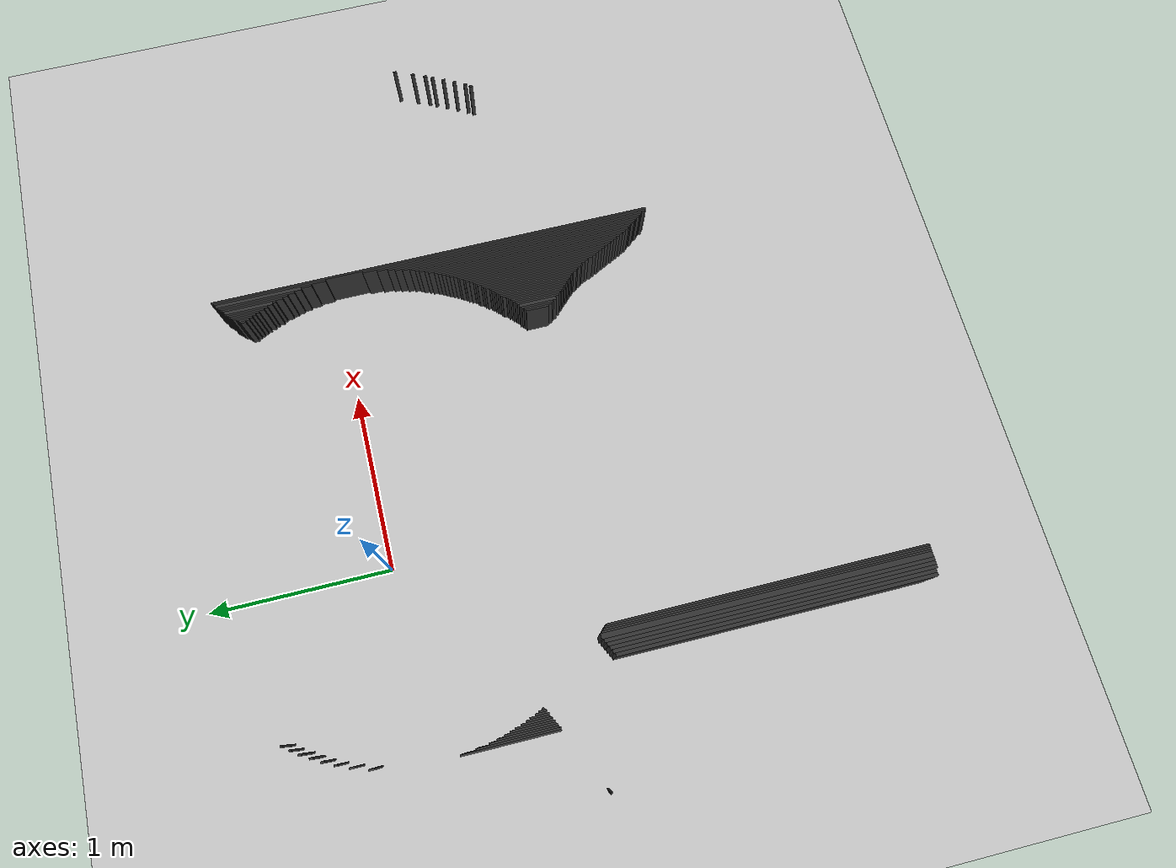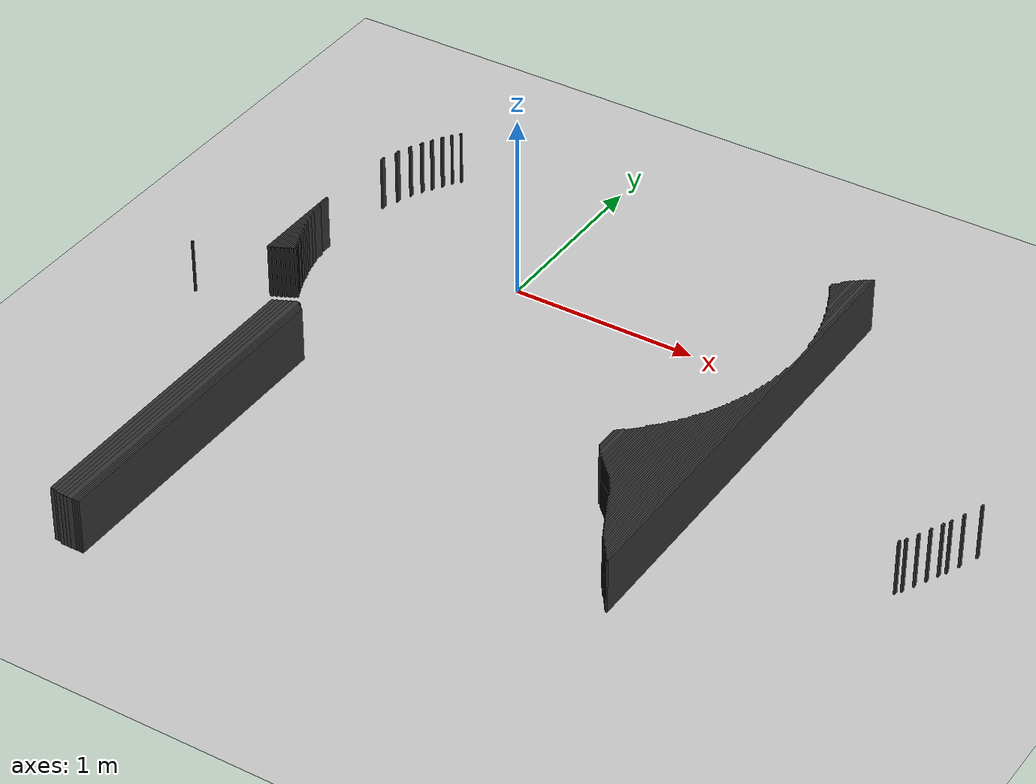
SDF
<sdf version="1.7">
 <world name="mapa_mundo">
  <model name="ground_plane">
   <static>true</static>
   <link name="link">
    <collision name="collision">
     <geometry><plane><normal>0 0 1</normal><size>10 10</size></plane></geometry>
     <surface><friction><ode><mu>100</mu><mu2>50</mu2></ode></friction></surface>
    </collision>
    <visual name="visual">
     <geometry><plane><normal>0 0 1</normal><size>10 10</size></plane></geometry>
     <material>
      <ambient>0.8 0.8 0.8 1</ambient>
      <diffuse>0.8 0.8 0.8 1</diffuse>
      <specular>0.8 0.8 0.8 1</specular>
     </material>
    </visual>
   </link>
  </model>
  <model name="wall_800">
   <static>true</static>
   <link name="link">
    <collision name="collision"><geometry><box><size>0.01 0.01 0.3</size></box></geometry></collision>
    <visual name="visual">
     <geometry><box><size>0.01 0.01 0.3</size></box></geometry>
     <material><ambient>0.2 0.2 0.2 1</ambient><diffuse>0.2 0.2 0.2 1</diffuse></material>
    </visual>
    <pose>-0.765 0.665 0.15 0 0 0</pose>
   </link>
  </model>
  <model name="wall_801">
   <static>true</static>
   <link name="link">
    <collision name="collision"><geometry><box><size>0.01 2.5 0.3</size></box></geometry></collision>
    <visual name="visual">
     <geometry><box><size>0.01 2.5 0.3</size></box></geometry>
     <material><ambient>0.2 0.2 0.2 1</ambient><diffuse>0.2 0.2 0.2 1</diffuse></material>
    </visual>
    <pose>1.635 -0.59 0.15 0 0 0</pose>
   </link>
  </model>
  <model name="wall_802">
   <static>true</static>
   <link name="link">
    <collision name="collision"><geometry><box><size>0.01 0.63 0.3</size></box></geometry></collision>
    <visual name="visual">
     <geometry><box><size>0.01 0.63 0.3</size></box></geometry>
     <material><ambient>0.2 0.2 0.2 1</ambient><diffuse>0.2 0.2 0.2 1</diffuse></material>
    </visual>
    <pose>1.625 0.335 0.15 0 0 0</pose>
   </link>
  </model>
  <model name="wall_803">
   <static>true</static>
   <link name="link">
    <collision name="collision"><geometry><box><size>0.02 0.48 0.3</size></box></geometry></collision>
    <visual name="visual">
     <geometry><box><size>0.02 0.48 0.3</size></box></geometry>
     <material><ambient>0.2 0.2 0.2 1</ambient><diffuse>0.2 0.2 0.2 1</diffuse></material>
    </visual>
    <pose>1.61 0.4 0.15 0 0 0</pose>
   </link>
  </model>
  <model name="wall_804">
   <static>true</static>
   <link name="link">
    <collision name="collision"><geometry><box><size>0.01 0.01 0.3</size></box></geometry></collision>
    <visual name="visual">
     <geometry><box><size>0.01 0.01 0.3</size></box></geometry>
     <material><ambient>0.2 0.2 0.2 1</ambient><diffuse>0.2 0.2 0.2 1</diffuse></material>
    </visual>
    <pose>-0.795 0.625 0.15 0 0 0</pose>
   </link>
  </model>
  <model name="wall_805">
   <static>true</static>
   <link name="link">
    <collision name="collision"><geometry><box><size>0.01 0.43 0.3</size></box></geometry></collision>
    <visual name="visual">
     <geometry><box><size>0.01 0.43 0.3</size></box></geometry>
     <material><ambient>0.2 0.2 0.2 1</ambient><diffuse>0.2 0.2 0.2 1</diffuse></material>
    </visual>
    <pose>1.595 0.41500000000000004 0.15 0 0 0</pose>
   </link>
  </model>
  <model name="wall_806">
   <static>true</static>
   <link name="link">
    <collision name="collision"><geometry><box><size>0.01 0.38 0.3</size></box></geometry></collision>
    <visual name="visual">
     <geometry><box><size>0.01 0.38 0.3</size></box></geometry>
     <material><ambient>0.2 0.2 0.2 1</ambient><diffuse>0.2 0.2 0.2 1</diffuse></material>
    </visual>
    <pose>1.585 0.43 0.15 0 0 0</pose>
   </link>
  </model>
  <model name="wall_807">
   <static>true</static>
   <link name="link">
    <collision name="collision"><geometry><box><size>0.01 0.34 0.3</size></box></geometry></collision>
    <visual name="visual">
     <geometry><box><size>0.01 0.34 0.3</size></box></geometry>
     <material><ambient>0.2 0.2 0.2 1</ambient><diffuse>0.2 0.2 0.2 1</diffuse></material>
    </visual>
    <pose>1.575 0.44 0.15 0 0 0</pose>
   </link>
  </model>
  <model name="wall_808">
   <static>true</static>
   <link name="link">
    <collision name="collision"><geometry><box><size>0.02 0.27 0.3</size></box></geometry></collision>
    <visual name="visual">
     <geometry><box><size>0.02 0.27 0.3</size></box></geometry>
     <material><ambient>0.2 0.2 0.2 1</ambient><diffuse>0.2 0.2 0.2 1</diffuse></material>
    </visual>
    <pose>1.56 0.465 0.15 0 0 0</pose>
   </link>
  </model>
  <model name="wall_809">
   <static>true</static>
   <link name="link">
    <collision name="collision"><geometry><box><size>0.01 0.02 0.3</size></box></geometry></collision>
    <visual name="visual">
     <geometry><box><size>0.01 0.02 0.3</size></box></geometry>
     <material><ambient>0.2 0.2 0.2 1</ambient><diffuse>0.2 0.2 0.2 1</diffuse></material>
    </visual>
    <pose>-0.8250000000000001 0.58 0.15 0 0 0</pose>
   </link>
  </model>
  <model name="wall_810">
   <static>true</static>
   <link name="link">
    <collision name="collision"><geometry><box><size>0.01 0.23 0.3</size></box></geometry></collision>
    <visual name="visual">
     <geometry><box><size>0.01 0.23 0.3</size></box></geometry>
     <material><ambient>0.2 0.2 0.2 1</ambient><diffuse>0.2 0.2 0.2 1</diffuse></material>
    </visual>
    <pose>1.545 0.47500000000000003 0.15 0 0 0</pose>
   </link>
  </model>
  <model name="wall_811">
   <static>true</static>
   <link name="link">
    <collision name="collision"><geometry><box><size>0.01 0.2 0.3</size></box></geometry></collision>
    <visual name="visual">
     <geometry><box><size>0.01 0.2 0.3</size></box></geometry>
     <material><ambient>0.2 0.2 0.2 1</ambient><diffuse>0.2 0.2 0.2 1</diffuse></material>
    </visual>
    <pose>1.5350000000000001 0.48 0.15 0 0 0</pose>
   </link>
  </model>
  <model name="wall_812">
   <static>true</static>
   <link name="link">
    <collision name="collision"><geometry><box><size>0.01 0.16 0.3</size></box></geometry></collision>
    <visual name="visual">
     <geometry><box><size>0.01 0.16 0.3</size></box></geometry>
     <material><ambient>0.2 0.2 0.2 1</ambient><diffuse>0.2 0.2 0.2 1</diffuse></material>
    </visual>
    <pose>1.5250000000000001 0.49 0.15 0 0 0</pose>
   </link>
  </model>
  <model name="wall_813">
   <static>true</static>
   <link name="link">
    <collision name="collision"><geometry><box><size>0.01 0.13 0.3</size></box></geometry></collision>
    <visual name="visual">
     <geometry><box><size>0.01 0.13 0.3</size></box></geometry>
     <material><ambient>0.2 0.2 0.2 1</ambient><diffuse>0.2 0.2 0.2 1</diffuse></material>
    </visual>
    <pose>1.5150000000000001 0.495 0.15 0 0 0</pose>
   </link>
  </model>
  <model name="wall_814">
   <static>true</static>
   <link name="link">
    <collision name="collision"><geometry><box><size>0.01 0.02 0.3</size></box></geometry></collision>
    <visual name="visual">
     <geometry><box><size>0.01 0.02 0.3</size></box></geometry>
     <material><ambient>0.2 0.2 0.2 1</ambient><diffuse>0.2 0.2 0.2 1</diffuse></material>
    </visual>
    <pose>-0.855 0.53 0.15 0 0 0</pose>
   </link>
  </model>
  <model name="wall_815">
   <static>true</static>
   <link name="link">
    <collision name="collision"><geometry><box><size>0.01 0.09 0.3</size></box></geometry></collision>
    <visual name="visual">
     <geometry><box><size>0.01 0.09 0.3</size></box></geometry>
     <material><ambient>0.2 0.2 0.2 1</ambient><diffuse>0.2 0.2 0.2 1</diffuse></material>
    </visual>
    <pose>1.5050000000000001 0.495 0.15 0 0 0</pose>
   </link>
  </model>
  <model name="wall_816">
   <static>true</static>
   <link name="link">
    <collision name="collision"><geometry><box><size>0.01 0.06 0.3</size></box></geometry></collision>
    <visual name="visual">
     <geometry><box><size>0.01 0.06 0.3</size></box></geometry>
     <material><ambient>0.2 0.2 0.2 1</ambient><diffuse>0.2 0.2 0.2 1</diffuse></material>
    </visual>
    <pose>1.495 0.5 0.15 0 0 0</pose>
   </link>
  </model>
  <model name="wall_817">
   <static>true</static>
   <link name="link">
    <collision name="collision"><geometry><box><size>0.01 0.03 0.3</size></box></geometry></collision>
    <visual name="visual">
     <geometry><box><size>0.01 0.03 0.3</size></box></geometry>
     <material><ambient>0.2 0.2 0.2 1</ambient><diffuse>0.2 0.2 0.2 1</diffuse></material>
    </visual>
    <pose>1.485 0.505 0.15 0 0 0</pose>
   </link>
  </model>
  <model name="wall_818">
   <static>true</static>
   <link name="link">
    <collision name="collision"><geometry><box><size>0.01 0.02 0.3</size></box></geometry></collision>
    <visual name="visual">
     <geometry><box><size>0.01 0.02 0.3</size></box></geometry>
     <material><ambient>0.2 0.2 0.2 1</ambient><diffuse>0.2 0.2 0.2 1</diffuse></material>
    </visual>
    <pose>-0.885 0.48 0.15 0 0 0</pose>
   </link>
  </model>
  <model name="wall_819">
   <static>true</static>
   <link name="link">
    <collision name="collision"><geometry><box><size>0.01 0.02 0.3</size></box></geometry></collision>
    <visual name="visual">
     <geometry><box><size>0.01 0.02 0.3</size></box></geometry>
     <material><ambient>0.2 0.2 0.2 1</ambient><diffuse>0.2 0.2 0.2 1</diffuse></material>
    </visual>
    <pose>-0.915 0.42 0.15 0 0 0</pose>
   </link>
  </model>
  <model name="wall_820">
   <static>true</static>
   <link name="link">
    <collision name="collision"><geometry><box><size>0.01 0.03 0.3</size></box></geometry></collision>
    <visual name="visual">
     <geometry><box><size>0.01 0.03 0.3</size></box></geometry>
     <material><ambient>0.2 0.2 0.2 1</ambient><diffuse>0.2 0.2 0.2 1</diffuse></material>
    </visual>
    <pose>-0.9450000000000001 0.34500000000000003 0.15 0 0 0</pose>
   </link>
  </model>
  <model name="wall_821">
   <static>true</static>
   <link name="link">
    <collision name="collision"><geometry><box><size>0.01 0.02 0.3</size></box></geometry></collision>
    <visual name="visual">
     <geometry><box><size>0.01 0.02 0.3</size></box></geometry>
     <material><ambient>0.2 0.2 0.2 1</ambient><diffuse>0.2 0.2 0.2 1</diffuse></material>
    </visual>
    <pose>1.565 0.32 0.15 0 0 0</pose>
   </link>
  </model>
  <model name="wall_822">
   <static>true</static>
   <link name="link">
    <collision name="collision"><geometry><box><size>0.01 0.03 0.3</size></box></geometry></collision>
    <visual name="visual">
     <geometry><box><size>0.01 0.03 0.3</size></box></geometry>
     <material><ambient>0.2 0.2 0.2 1</ambient><diffuse>0.2 0.2 0.2 1</diffuse></material>
    </visual>
    <pose>-0.975 0.255 0.15 0 0 0</pose>
   </link>
  </model>
  <model name="wall_823">
   <static>true</static>
   <link name="link">
    <collision name="collision"><geometry><box><size>0.01 0.06 0.3</size></box></geometry></collision>
    <visual name="visual">
     <geometry><box><size>0.01 0.06 0.3</size></box></geometry>
     <material><ambient>0.2 0.2 0.2 1</ambient><diffuse>0.2 0.2 0.2 1</diffuse></material>
    </visual>
    <pose>1.615 0.13 0.15 0 0 0</pose>
   </link>
  </model>
  <model name="wall_824">
   <static>true</static>
   <link name="link">
    <collision name="collision"><geometry><box><size>0.01 0.51 0.3</size></box></geometry></collision>
    <visual name="visual">
     <geometry><box><size>0.01 0.51 0.3</size></box></geometry>
     <material><ambient>0.2 0.2 0.2 1</ambient><diffuse>0.2 0.2 0.2 1</diffuse></material>
    </visual>
    <pose>-1.0150000000000001 -0.435 0.15 0 0 0</pose>
   </link>
  </model>
  <model name="wall_825">
   <static>true</static>
   <link name="link">
    <collision name="collision">
     <geometry><box><size>0.01 1.6400000000000001 0.3</size></box></geometry>
    </collision>
    <visual name="visual">
     <geometry><box><size>0.01 1.6400000000000001 0.3</size></box></geometry>
     <material><ambient>0.2 0.2 0.2 1</ambient><diffuse>0.2 0.2 0.2 1</diffuse></material>
    </visual>
    <pose>1.625 -1.01 0.15 0 0 0</pose>
   </link>
  </model>
  <model name="wall_826">
   <static>true</static>
   <link name="link">
    <collision name="collision"><geometry><box><size>0.01 0.43 0.3</size></box></geometry></collision>
    <visual name="visual">
     <geometry><box><size>0.01 0.43 0.3</size></box></geometry>
     <material><ambient>0.2 0.2 0.2 1</ambient><diffuse>0.2 0.2 0.2 1</diffuse></material>
    </visual>
    <pose>-1.0050000000000001 -0.47500000000000003 0.15 0 0 0</pose>
   </link>
  </model>
  <model name="wall_827">
   <static>true</static>
   <link name="link">
    <collision name="collision"><geometry><box><size>0.01 1.54 0.3</size></box></geometry></collision>
    <visual name="visual">
     <geometry><box><size>0.01 1.54 0.3</size></box></geometry>
     <material><ambient>0.2 0.2 0.2 1</ambient><diffuse>0.2 0.2 0.2 1</diffuse></material>
    </visual>
    <pose>1.615 -1.04 0.15 0 0 0</pose>
   </link>
  </model>
  <model name="wall_828">
   <static>true</static>
   <link name="link">
    <collision name="collision">
     <geometry><box><size>0.01 0.35000000000000003 0.3</size></box></geometry>
    </collision>
    <visual name="visual">
     <geometry><box><size>0.01 0.35000000000000003 0.3</size></box></geometry>
     <material><ambient>0.2 0.2 0.2 1</ambient><diffuse>0.2 0.2 0.2 1</diffuse></material>
    </visual>
    <pose>-0.995 -0.505 0.15 0 0 0</pose>
   </link>
  </model>
  <model name="wall_829">
   <static>true</static>
   <link name="link">
    <collision name="collision"><geometry><box><size>0.01 1.47 0.3</size></box></geometry></collision>
    <visual name="visual">
     <geometry><box><size>0.01 1.47 0.3</size></box></geometry>
     <material><ambient>0.2 0.2 0.2 1</ambient><diffuse>0.2 0.2 0.2 1</diffuse></material>
    </visual>
    <pose>1.605 -1.065 0.15 0 0 0</pose>
   </link>
  </model>
  <model name="wall_830">
   <static>true</static>
   <link name="link">
    <collision name="collision"><geometry><box><size>0.01 0.31 0.3</size></box></geometry></collision>
    <visual name="visual">
     <geometry><box><size>0.01 0.31 0.3</size></box></geometry>
     <material><ambient>0.2 0.2 0.2 1</ambient><diffuse>0.2 0.2 0.2 1</diffuse></material>
    </visual>
    <pose>-0.985 -0.525 0.15 0 0 0</pose>
   </link>
  </model>
  <model name="wall_831">
   <static>true</static>
   <link name="link">
    <collision name="collision"><geometry><box><size>0.01 1.42 0.3</size></box></geometry></collision>
    <visual name="visual">
     <geometry><box><size>0.01 1.42 0.3</size></box></geometry>
     <material><ambient>0.2 0.2 0.2 1</ambient><diffuse>0.2 0.2 0.2 1</diffuse></material>
    </visual>
    <pose>1.595 -1.08 0.15 0 0 0</pose>
   </link>
  </model>
  <model name="wall_832">
   <static>true</static>
   <link name="link">
    <collision name="collision"><geometry><box><size>0.01 0.26 0.3</size></box></geometry></collision>
    <visual name="visual">
     <geometry><box><size>0.01 0.26 0.3</size></box></geometry>
     <material><ambient>0.2 0.2 0.2 1</ambient><diffuse>0.2 0.2 0.2 1</diffuse></material>
    </visual>
    <pose>-0.975 -0.54 0.15 0 0 0</pose>
   </link>
  </model>
  <model name="wall_833">
   <static>true</static>
   <link name="link">
    <collision name="collision"><geometry><box><size>0.01 1.36 0.3</size></box></geometry></collision>
    <visual name="visual">
     <geometry><box><size>0.01 1.36 0.3</size></box></geometry>
     <material><ambient>0.2 0.2 0.2 1</ambient><diffuse>0.2 0.2 0.2 1</diffuse></material>
    </visual>
    <pose>1.585 -1.09 0.15 0 0 0</pose>
   </link>
  </model>
  <model name="wall_834">
   <static>true</static>
   <link name="link">
    <collision name="collision"><geometry><box><size>0.01 0.23 0.3</size></box></geometry></collision>
    <visual name="visual">
     <geometry><box><size>0.01 0.23 0.3</size></box></geometry>
     <material><ambient>0.2 0.2 0.2 1</ambient><diffuse>0.2 0.2 0.2 1</diffuse></material>
    </visual>
    <pose>-0.965 -0.555 0.15 0 0 0</pose>
   </link>
  </model>
  <model name="wall_835">
   <static>true</static>
   <link name="link">
    <collision name="collision"><geometry><box><size>0.01 1.31 0.3</size></box></geometry></collision>
    <visual name="visual">
     <geometry><box><size>0.01 1.31 0.3</size></box></geometry>
     <material><ambient>0.2 0.2 0.2 1</ambient><diffuse>0.2 0.2 0.2 1</diffuse></material>
    </visual>
    <pose>1.575 -1.105 0.15 0 0 0</pose>
   </link>
  </model>
  <model name="wall_836">
   <static>true</static>
   <link name="link">
    <collision name="collision"><geometry><box><size>0.01 0.19 0.3</size></box></geometry></collision>
    <visual name="visual">
     <geometry><box><size>0.01 0.19 0.3</size></box></geometry>
     <material><ambient>0.2 0.2 0.2 1</ambient><diffuse>0.2 0.2 0.2 1</diffuse></material>
    </visual>
    <pose>-0.9550000000000001 -0.5650000000000001 0.15 0 0 0</pose>
   </link>
  </model>
  <model name="wall_837">
   <static>true</static>
   <link name="link">
    <collision name="collision"><geometry><box><size>0.01 1.27 0.3</size></box></geometry></collision>
    <visual name="visual">
     <geometry><box><size>0.01 1.27 0.3</size></box></geometry>
     <material><ambient>0.2 0.2 0.2 1</ambient><diffuse>0.2 0.2 0.2 1</diffuse></material>
    </visual>
    <pose>1.565 -1.115 0.15 0 0 0</pose>
   </link>
  </model>
  <model name="wall_838">
   <static>true</static>
   <link name="link">
    <collision name="collision"><geometry><box><size>0.01 0.16 0.3</size></box></geometry></collision>
    <visual name="visual">
     <geometry><box><size>0.01 0.16 0.3</size></box></geometry>
     <material><ambient>0.2 0.2 0.2 1</ambient><diffuse>0.2 0.2 0.2 1</diffuse></material>
    </visual>
    <pose>-0.9450000000000001 -0.58 0.15 0 0 0</pose>
   </link>
  </model>
  <model name="wall_839">
   <static>true</static>
   <link name="link">
    <collision name="collision"><geometry><box><size>0.01 1.23 0.3</size></box></geometry></collision>
    <visual name="visual">
     <geometry><box><size>0.01 1.23 0.3</size></box></geometry>
     <material><ambient>0.2 0.2 0.2 1</ambient><diffuse>0.2 0.2 0.2 1</diffuse></material>
    </visual>
    <pose>1.555 -1.115 0.15 0 0 0</pose>
   </link>
  </model>
  <model name="wall_840">
   <static>true</static>
   <link name="link">
    <collision name="collision"><geometry><box><size>0.01 0.12 0.3</size></box></geometry></collision>
    <visual name="visual">
     <geometry><box><size>0.01 0.12 0.3</size></box></geometry>
     <material><ambient>0.2 0.2 0.2 1</ambient><diffuse>0.2 0.2 0.2 1</diffuse></material>
    </visual>
    <pose>-0.935 -0.59 0.15 0 0 0</pose>
   </link>
  </model>
  <model name="wall_841">
   <static>true</static>
   <link name="link">
    <collision name="collision"><geometry><box><size>0.01 1.19 0.3</size></box></geometry></collision>
    <visual name="visual">
     <geometry><box><size>0.01 1.19 0.3</size></box></geometry>
     <material><ambient>0.2 0.2 0.2 1</ambient><diffuse>0.2 0.2 0.2 1</diffuse></material>
    </visual>
    <pose>1.545 -1.125 0.15 0 0 0</pose>
   </link>
  </model>
  <model name="wall_842">
   <static>true</static>
   <link name="link">
    <collision name="collision"><geometry><box><size>0.01 0.1 0.3</size></box></geometry></collision>
    <visual name="visual">
     <geometry><box><size>0.01 0.1 0.3</size></box></geometry>
     <material><ambient>0.2 0.2 0.2 1</ambient><diffuse>0.2 0.2 0.2 1</diffuse></material>
    </visual>
    <pose>-0.925 -0.6 0.15 0 0 0</pose>
   </link>
  </model>
  <model name="wall_843">
   <static>true</static>
   <link name="link">
    <collision name="collision"><geometry><box><size>0.01 1.16 0.3</size></box></geometry></collision>
    <visual name="visual">
     <geometry><box><size>0.01 1.16 0.3</size></box></geometry>
     <material><ambient>0.2 0.2 0.2 1</ambient><diffuse>0.2 0.2 0.2 1</diffuse></material>
    </visual>
    <pose>1.5350000000000001 -1.1300000000000001 0.15 0 0 0</pose>
   </link>
  </model>
  <model name="wall_844">
   <static>true</static>
   <link name="link">
    <collision name="collision"><geometry><box><size>0.01 0.06 0.3</size></box></geometry></collision>
    <visual name="visual">
     <geometry><box><size>0.01 0.06 0.3</size></box></geometry>
     <material><ambient>0.2 0.2 0.2 1</ambient><diffuse>0.2 0.2 0.2 1</diffuse></material>
    </visual>
    <pose>-0.915 -0.61 0.15 0 0 0</pose>
   </link>
  </model>
  <model name="wall_845">
   <static>true</static>
   <link name="link">
    <collision name="collision"><geometry><box><size>0.01 1.11 0.3</size></box></geometry></collision>
    <visual name="visual">
     <geometry><box><size>0.01 1.11 0.3</size></box></geometry>
     <material><ambient>0.2 0.2 0.2 1</ambient><diffuse>0.2 0.2 0.2 1</diffuse></material>
    </visual>
    <pose>1.5250000000000001 -1.135 0.15 0 0 0</pose>
   </link>
  </model>
  <model name="wall_846">
   <static>true</static>
   <link name="link">
    <collision name="collision"><geometry><box><size>0.01 0.04 0.3</size></box></geometry></collision>
    <visual name="visual">
     <geometry><box><size>0.01 0.04 0.3</size></box></geometry>
     <material><ambient>0.2 0.2 0.2 1</ambient><diffuse>0.2 0.2 0.2 1</diffuse></material>
    </visual>
    <pose>-0.905 -0.62 0.15 0 0 0</pose>
   </link>
  </model>
  <model name="wall_847">
   <static>true</static>
   <link name="link">
    <collision name="collision"><geometry><box><size>0.01 1.07 0.3</size></box></geometry></collision>
    <visual name="visual">
     <geometry><box><size>0.01 1.07 0.3</size></box></geometry>
     <material><ambient>0.2 0.2 0.2 1</ambient><diffuse>0.2 0.2 0.2 1</diffuse></material>
    </visual>
    <pose>1.5150000000000001 -1.135 0.15 0 0 0</pose>
   </link>
  </model>
  <model name="wall_848">
   <static>true</static>
   <link name="link">
    <collision name="collision"><geometry><box><size>0.01 0.02 0.3</size></box></geometry></collision>
    <visual name="visual">
     <geometry><box><size>0.01 0.02 0.3</size></box></geometry>
     <material><ambient>0.2 0.2 0.2 1</ambient><diffuse>0.2 0.2 0.2 1</diffuse></material>
    </visual>
    <pose>2.855 -0.62 0.15 0 0 0</pose>
   </link>
  </model>
  <model name="wall_849">
   <static>true</static>
   <link name="link">
    <collision name="collision"><geometry><box><size>0.01 0.01 0.3</size></box></geometry></collision>
    <visual name="visual">
     <geometry><box><size>0.01 0.01 0.3</size></box></geometry>
     <material><ambient>0.2 0.2 0.2 1</ambient><diffuse>0.2 0.2 0.2 1</diffuse></material>
    </visual>
    <pose>-0.895 -0.625 0.15 0 0 0</pose>
   </link>
  </model>
  <model name="wall_850">
   <static>true</static>
   <link name="link">
    <collision name="collision"><geometry><box><size>0.01 1.03 0.3</size></box></geometry></collision>
    <visual name="visual">
     <geometry><box><size>0.01 1.03 0.3</size></box></geometry>
     <material><ambient>0.2 0.2 0.2 1</ambient><diffuse>0.2 0.2 0.2 1</diffuse></material>
    </visual>
    <pose>1.5050000000000001 -1.135 0.15 0 0 0</pose>
   </link>
  </model>
  <model name="wall_851">
   <static>true</static>
   <link name="link">
    <collision name="collision"><geometry><box><size>0.01 0.99 0.3</size></box></geometry></collision>
    <visual name="visual">
     <geometry><box><size>0.01 0.99 0.3</size></box></geometry>
     <material><ambient>0.2 0.2 0.2 1</ambient><diffuse>0.2 0.2 0.2 1</diffuse></material>
    </visual>
    <pose>1.495 -1.135 0.15 0 0 0</pose>
   </link>
  </model>
  <model name="wall_852">
   <static>true</static>
   <link name="link">
    <collision name="collision">
     <geometry><box><size>0.01 0.9500000000000001 0.3</size></box></geometry>
    </collision>
    <visual name="visual">
     <geometry><box><size>0.01 0.9500000000000001 0.3</size></box></geometry>
     <material><ambient>0.2 0.2 0.2 1</ambient><diffuse>0.2 0.2 0.2 1</diffuse></material>
    </visual>
    <pose>1.485 -1.135 0.15 0 0 0</pose>
   </link>
  </model>
  <model name="wall_853">
   <static>true</static>
   <link name="link">
    <collision name="collision"><geometry><box><size>0.01 0.91 0.3</size></box></geometry></collision>
    <visual name="visual">
     <geometry><box><size>0.01 0.91 0.3</size></box></geometry>
     <material><ambient>0.2 0.2 0.2 1</ambient><diffuse>0.2 0.2 0.2 1</diffuse></material>
    </visual>
    <pose>1.475 -1.135 0.15 0 0 0</pose>
   </link>
  </model>
  <model name="wall_854">
   <static>true</static>
   <link name="link">
    <collision name="collision"><geometry><box><size>0.01 0.87 0.3</size></box></geometry></collision>
    <visual name="visual">
     <geometry><box><size>0.01 0.87 0.3</size></box></geometry>
     <material><ambient>0.2 0.2 0.2 1</ambient><diffuse>0.2 0.2 0.2 1</diffuse></material>
    </visual>
    <pose>1.465 -1.135 0.15 0 0 0</pose>
   </link>
  </model>
  <model name="wall_855">
   <static>true</static>
   <link name="link">
    <collision name="collision"><geometry><box><size>0.01 0.84 0.3</size></box></geometry></collision>
    <visual name="visual">
     <geometry><box><size>0.01 0.84 0.3</size></box></geometry>
     <material><ambient>0.2 0.2 0.2 1</ambient><diffuse>0.2 0.2 0.2 1</diffuse></material>
    </visual>
    <pose>1.455 -1.1300000000000001 0.15 0 0 0</pose>
   </link>
  </model>
  <model name="wall_856">
   <static>true</static>
   <link name="link">
    <collision name="collision"><geometry><box><size>0.01 0.02 0.3</size></box></geometry></collision>
    <visual name="visual">
     <geometry><box><size>0.01 0.02 0.3</size></box></geometry>
     <material><ambient>0.2 0.2 0.2 1</ambient><diffuse>0.2 0.2 0.2 1</diffuse></material>
    </visual>
    <pose>2.815 -0.72 0.15 0 0 0</pose>
   </link>
  </model>
  <model name="wall_857">
   <static>true</static>
   <link name="link">
    <collision name="collision"><geometry><box><size>0.01 0.8 0.3</size></box></geometry></collision>
    <visual name="visual">
     <geometry><box><size>0.01 0.8 0.3</size></box></geometry>
     <material><ambient>0.2 0.2 0.2 1</ambient><diffuse>0.2 0.2 0.2 1</diffuse></material>
    </visual>
    <pose>1.445 -1.1300000000000001 0.15 0 0 0</pose>
   </link>
  </model>
  <model name="wall_858">
   <static>true</static>
   <link name="link">
    <collision name="collision"><geometry><box><size>0.01 0.77 0.3</size></box></geometry></collision>
    <visual name="visual">
     <geometry><box><size>0.01 0.77 0.3</size></box></geometry>
     <material><ambient>0.2 0.2 0.2 1</ambient><diffuse>0.2 0.2 0.2 1</diffuse></material>
    </visual>
    <pose>1.435 -1.125 0.15 0 0 0</pose>
   </link>
  </model>
  <model name="wall_859">
   <static>true</static>
   <link name="link">
    <collision name="collision"><geometry><box><size>0.01 0.73 0.3</size></box></geometry></collision>
    <visual name="visual">
     <geometry><box><size>0.01 0.73 0.3</size></box></geometry>
     <material><ambient>0.2 0.2 0.2 1</ambient><diffuse>0.2 0.2 0.2 1</diffuse></material>
    </visual>
    <pose>1.425 -1.125 0.15 0 0 0</pose>
   </link>
  </model>
  <model name="wall_860">
   <static>true</static>
   <link name="link">
    <collision name="collision">
     <geometry><box><size>0.01 0.6900000000000001 0.3</size></box></geometry>
    </collision>
    <visual name="visual">
     <geometry><box><size>0.01 0.6900000000000001 0.3</size></box></geometry>
     <material><ambient>0.2 0.2 0.2 1</ambient><diffuse>0.2 0.2 0.2 1</diffuse></material>
    </visual>
    <pose>1.415 -1.125 0.15 0 0 0</pose>
   </link>
  </model>
  <model name="wall_861">
   <static>true</static>
   <link name="link">
    <collision name="collision"><geometry><box><size>0.01 0.02 0.3</size></box></geometry></collision>
    <visual name="visual">
     <geometry><box><size>0.01 0.02 0.3</size></box></geometry>
     <material><ambient>0.2 0.2 0.2 1</ambient><diffuse>0.2 0.2 0.2 1</diffuse></material>
    </visual>
    <pose>2.785 -0.79 0.15 0 0 0</pose>
   </link>
  </model>
  <model name="wall_862">
   <static>true</static>
   <link name="link">
    <collision name="collision"><geometry><box><size>0.01 0.65 0.3</size></box></geometry></collision>
    <visual name="visual">
     <geometry><box><size>0.01 0.65 0.3</size></box></geometry>
     <material><ambient>0.2 0.2 0.2 1</ambient><diffuse>0.2 0.2 0.2 1</diffuse></material>
    </visual>
    <pose>1.405 -1.115 0.15 0 0 0</pose>
   </link>
  </model>
  <model name="wall_863">
   <static>true</static>
   <link name="link">
    <collision name="collision"><geometry><box><size>0.01 0.62 0.3</size></box></geometry></collision>
    <visual name="visual">
     <geometry><box><size>0.01 0.62 0.3</size></box></geometry>
     <material><ambient>0.2 0.2 0.2 1</ambient><diffuse>0.2 0.2 0.2 1</diffuse></material>
    </visual>
    <pose>1.395 -1.11 0.15 0 0 0</pose>
   </link>
  </model>
  <model name="wall_864">
   <static>true</static>
   <link name="link">
    <collision name="collision"><geometry><box><size>0.01 0.58 0.3</size></box></geometry></collision>
    <visual name="visual">
     <geometry><box><size>0.01 0.58 0.3</size></box></geometry>
     <material><ambient>0.2 0.2 0.2 1</ambient><diffuse>0.2 0.2 0.2 1</diffuse></material>
    </visual>
    <pose>1.385 -1.11 0.15 0 0 0</pose>
   </link>
  </model>
  <model name="wall_865">
   <static>true</static>
   <link name="link">
    <collision name="collision"><geometry><box><size>0.01 0.02 0.3</size></box></geometry></collision>
    <visual name="visual">
     <geometry><box><size>0.01 0.02 0.3</size></box></geometry>
     <material><ambient>0.2 0.2 0.2 1</ambient><diffuse>0.2 0.2 0.2 1</diffuse></material>
    </visual>
    <pose>2.765 -0.8300000000000001 0.15 0 0 0</pose>
   </link>
  </model>
  <model name="wall_866">
   <static>true</static>
   <link name="link">
    <collision name="collision"><geometry><box><size>0.01 0.56 0.3</size></box></geometry></collision>
    <visual name="visual">
     <geometry><box><size>0.01 0.56 0.3</size></box></geometry>
     <material><ambient>0.2 0.2 0.2 1</ambient><diffuse>0.2 0.2 0.2 1</diffuse></material>
    </visual>
    <pose>1.375 -1.11 0.15 0 0 0</pose>
   </link>
  </model>
  <model name="wall_867">
   <static>true</static>
   <link name="link">
    <collision name="collision"><geometry><box><size>0.01 0.53 0.3</size></box></geometry></collision>
    <visual name="visual">
     <geometry><box><size>0.01 0.53 0.3</size></box></geometry>
     <material><ambient>0.2 0.2 0.2 1</ambient><diffuse>0.2 0.2 0.2 1</diffuse></material>
    </visual>
    <pose>1.365 -1.105 0.15 0 0 0</pose>
   </link>
  </model>
  <model name="wall_868">
   <static>true</static>
   <link name="link">
    <collision name="collision"><geometry><box><size>0.01 0.01 0.3</size></box></geometry></collision>
    <visual name="visual">
     <geometry><box><size>0.01 0.01 0.3</size></box></geometry>
     <material><ambient>0.2 0.2 0.2 1</ambient><diffuse>0.2 0.2 0.2 1</diffuse></material>
    </visual>
    <pose>-1.355 -0.855 0.15 0 0 0</pose>
   </link>
  </model>
  <model name="wall_869">
   <static>true</static>
   <link name="link">
    <collision name="collision"><geometry><box><size>0.01 0.5 0.3</size></box></geometry></collision>
    <visual name="visual">
     <geometry><box><size>0.01 0.5 0.3</size></box></geometry>
     <material><ambient>0.2 0.2 0.2 1</ambient><diffuse>0.2 0.2 0.2 1</diffuse></material>
    </visual>
    <pose>1.355 -1.11 0.15 0 0 0</pose>
   </link>
  </model>
  <model name="wall_870">
   <static>true</static>
   <link name="link">
    <collision name="collision">
     <geometry><box><size>0.01 0.47000000000000003 0.3</size></box></geometry>
    </collision>
    <visual name="visual">
     <geometry><box><size>0.01 0.47000000000000003 0.3</size></box></geometry>
     <material><ambient>0.2 0.2 0.2 1</ambient><diffuse>0.2 0.2 0.2 1</diffuse></material>
    </visual>
    <pose>1.345 -1.105 0.15 0 0 0</pose>
   </link>
  </model>
  <model name="wall_871">
   <static>true</static>
   <link name="link">
    <collision name="collision"><geometry><box><size>0.01 0.45 0.3</size></box></geometry></collision>
    <visual name="visual">
     <geometry><box><size>0.01 0.45 0.3</size></box></geometry>
     <material><ambient>0.2 0.2 0.2 1</ambient><diffuse>0.2 0.2 0.2 1</diffuse></material>
    </visual>
    <pose>1.335 -1.105 0.15 0 0 0</pose>
   </link>
  </model>
  <model name="wall_872">
   <static>true</static>
   <link name="link">
    <collision name="collision"><geometry><box><size>0.01 0.02 0.3</size></box></geometry></collision>
    <visual name="visual">
     <geometry><box><size>0.01 0.02 0.3</size></box></geometry>
     <material><ambient>0.2 0.2 0.2 1</ambient><diffuse>0.2 0.2 0.2 1</diffuse></material>
    </visual>
    <pose>2.735 -0.89 0.15 0 0 0</pose>
   </link>
  </model>
  <model name="wall_873">
   <static>true</static>
   <link name="link">
    <collision name="collision"><geometry><box><size>0.01 0.43 0.3</size></box></geometry></collision>
    <visual name="visual">
     <geometry><box><size>0.01 0.43 0.3</size></box></geometry>
     <material><ambient>0.2 0.2 0.2 1</ambient><diffuse>0.2 0.2 0.2 1</diffuse></material>
    </visual>
    <pose>1.325 -1.105 0.15 0 0 0</pose>
   </link>
  </model>
  <model name="wall_874">
   <static>true</static>
   <link name="link">
    <collision name="collision">
     <geometry><box><size>0.01 0.41000000000000003 0.3</size></box></geometry>
    </collision>
    <visual name="visual">
     <geometry><box><size>0.01 0.41000000000000003 0.3</size></box></geometry>
     <material><ambient>0.2 0.2 0.2 1</ambient><diffuse>0.2 0.2 0.2 1</diffuse></material>
    </visual>
    <pose>1.315 -1.105 0.15 0 0 0</pose>
   </link>
  </model>
  <model name="wall_875">
   <static>true</static>
   <link name="link">
    <collision name="collision"><geometry><box><size>0.01 0.39 0.3</size></box></geometry></collision>
    <visual name="visual">
     <geometry><box><size>0.01 0.39 0.3</size></box></geometry>
     <material><ambient>0.2 0.2 0.2 1</ambient><diffuse>0.2 0.2 0.2 1</diffuse></material>
    </visual>
    <pose>1.305 -1.105 0.15 0 0 0</pose>
   </link>
  </model>
  <model name="wall_876">
   <static>true</static>
   <link name="link">
    <collision name="collision"><geometry><box><size>0.01 0.37 0.3</size></box></geometry></collision>
    <visual name="visual">
     <geometry><box><size>0.01 0.37 0.3</size></box></geometry>
     <material><ambient>0.2 0.2 0.2 1</ambient><diffuse>0.2 0.2 0.2 1</diffuse></material>
    </visual>
    <pose>1.295 -1.105 0.15 0 0 0</pose>
   </link>
  </model>
  <model name="wall_877">
   <static>true</static>
   <link name="link">
    <collision name="collision"><geometry><box><size>0.01 0.34 0.3</size></box></geometry></collision>
    <visual name="visual">
     <geometry><box><size>0.01 0.34 0.3</size></box></geometry>
     <material><ambient>0.2 0.2 0.2 1</ambient><diffuse>0.2 0.2 0.2 1</diffuse></material>
    </visual>
    <pose>1.285 -1.11 0.15 0 0 0</pose>
   </link>
  </model>
  <model name="wall_878">
   <static>true</static>
   <link name="link">
    <collision name="collision"><geometry><box><size>0.01 0.02 0.3</size></box></geometry></collision>
    <visual name="visual">
     <geometry><box><size>0.01 0.02 0.3</size></box></geometry>
     <material><ambient>0.2 0.2 0.2 1</ambient><diffuse>0.2 0.2 0.2 1</diffuse></material>
    </visual>
    <pose>2.705 -0.9500000000000001 0.15 0 0 0</pose>
   </link>
  </model>
  <model name="wall_879">
   <static>true</static>
   <link name="link">
    <collision name="collision"><geometry><box><size>0.01 0.32 0.3</size></box></geometry></collision>
    <visual name="visual">
     <geometry><box><size>0.01 0.32 0.3</size></box></geometry>
     <material><ambient>0.2 0.2 0.2 1</ambient><diffuse>0.2 0.2 0.2 1</diffuse></material>
    </visual>
    <pose>1.2750000000000001 -1.11 0.15 0 0 0</pose>
   </link>
  </model>
  <model name="wall_880">
   <static>true</static>
   <link name="link">
    <collision name="collision"><geometry><box><size>0.01 0.3 0.3</size></box></geometry></collision>
    <visual name="visual">
     <geometry><box><size>0.01 0.3 0.3</size></box></geometry>
     <material><ambient>0.2 0.2 0.2 1</ambient><diffuse>0.2 0.2 0.2 1</diffuse></material>
    </visual>
    <pose>1.2650000000000001 -1.11 0.15 0 0 0</pose>
   </link>
  </model>
  <model name="wall_881">
   <static>true</static>
   <link name="link">
    <collision name="collision"><geometry><box><size>0.01 0.28 0.3</size></box></geometry></collision>
    <visual name="visual">
     <geometry><box><size>0.01 0.28 0.3</size></box></geometry>
     <material><ambient>0.2 0.2 0.2 1</ambient><diffuse>0.2 0.2 0.2 1</diffuse></material>
    </visual>
    <pose>1.2550000000000001 -1.11 0.15 0 0 0</pose>
   </link>
  </model>
  <model name="wall_882">
   <static>true</static>
   <link name="link">
    <collision name="collision"><geometry><box><size>0.01 0.26 0.3</size></box></geometry></collision>
    <visual name="visual">
     <geometry><box><size>0.01 0.26 0.3</size></box></geometry>
     <material><ambient>0.2 0.2 0.2 1</ambient><diffuse>0.2 0.2 0.2 1</diffuse></material>
    </visual>
    <pose>1.245 -1.11 0.15 0 0 0</pose>
   </link>
  </model>
  <model name="wall_883">
   <static>true</static>
   <link name="link">
    <collision name="collision"><geometry><box><size>0.03 1.77 0.3</size></box></geometry></collision>
    <visual name="visual">
     <geometry><box><size>0.03 1.77 0.3</size></box></geometry>
     <material><ambient>0.2 0.2 0.2 1</ambient><diffuse>0.2 0.2 0.2 1</diffuse></material>
    </visual>
    <pose>-0.625 -1.875 0.15 0 0 0</pose>
   </link>
  </model>
  <model name="wall_884">
   <static>true</static>
   <link name="link">
    <collision name="collision"><geometry><box><size>0.01 0.24 0.3</size></box></geometry></collision>
    <visual name="visual">
     <geometry><box><size>0.01 0.24 0.3</size></box></geometry>
     <material><ambient>0.2 0.2 0.2 1</ambient><diffuse>0.2 0.2 0.2 1</diffuse></material>
    </visual>
    <pose>1.235 -1.11 0.15 0 0 0</pose>
   </link>
  </model>
  <model name="wall_885">
   <static>true</static>
   <link name="link">
    <collision name="collision"><geometry><box><size>0.02 1.76 0.3</size></box></geometry></collision>
    <visual name="visual">
     <geometry><box><size>0.02 1.76 0.3</size></box></geometry>
     <material><ambient>0.2 0.2 0.2 1</ambient><diffuse>0.2 0.2 0.2 1</diffuse></material>
    </visual>
    <pose>-0.65 -1.8800000000000001 0.15 0 0 0</pose>
   </link>
  </model>
  <model name="wall_886">
   <static>true</static>
   <link name="link">
    <collision name="collision"><geometry><box><size>0.01 1.76 0.3</size></box></geometry></collision>
    <visual name="visual">
     <geometry><box><size>0.01 1.76 0.3</size></box></geometry>
     <material><ambient>0.2 0.2 0.2 1</ambient><diffuse>0.2 0.2 0.2 1</diffuse></material>
    </visual>
    <pose>-0.605 -1.8800000000000001 0.15 0 0 0</pose>
   </link>
  </model>
  <model name="wall_887">
   <static>true</static>
   <link name="link">
    <collision name="collision"><geometry><box><size>0.02 0.21 0.3</size></box></geometry></collision>
    <visual name="visual">
     <geometry><box><size>0.02 0.21 0.3</size></box></geometry>
     <material><ambient>0.2 0.2 0.2 1</ambient><diffuse>0.2 0.2 0.2 1</diffuse></material>
    </visual>
    <pose>1.22 -1.105 0.15 0 0 0</pose>
   </link>
  </model>
  <model name="wall_888">
   <static>true</static>
   <link name="link">
    <collision name="collision"><geometry><box><size>0.01 0.02 0.3</size></box></geometry></collision>
    <visual name="visual">
     <geometry><box><size>0.01 0.02 0.3</size></box></geometry>
     <material><ambient>0.2 0.2 0.2 1</ambient><diffuse>0.2 0.2 0.2 1</diffuse></material>
    </visual>
    <pose>2.6750000000000003 -1.01 0.15 0 0 0</pose>
   </link>
  </model>
  <model name="wall_889">
   <static>true</static>
   <link name="link">
    <collision name="collision"><geometry><box><size>0.02 1.75 0.3</size></box></geometry></collision>
    <visual name="visual">
     <geometry><box><size>0.02 1.75 0.3</size></box></geometry>
     <material><ambient>0.2 0.2 0.2 1</ambient><diffuse>0.2 0.2 0.2 1</diffuse></material>
    </visual>
    <pose>-0.67 -1.885 0.15 0 0 0</pose>
   </link>
  </model>
  <model name="wall_890">
   <static>true</static>
   <link name="link">
    <collision name="collision"><geometry><box><size>0.01 1.75 0.3</size></box></geometry></collision>
    <visual name="visual">
     <geometry><box><size>0.01 1.75 0.3</size></box></geometry>
     <material><ambient>0.2 0.2 0.2 1</ambient><diffuse>0.2 0.2 0.2 1</diffuse></material>
    </visual>
    <pose>-0.595 -1.885 0.15 0 0 0</pose>
   </link>
  </model>
  <model name="wall_891">
   <static>true</static>
   <link name="link">
    <collision name="collision"><geometry><box><size>0.01 0.18 0.3</size></box></geometry></collision>
    <visual name="visual">
     <geometry><box><size>0.01 0.18 0.3</size></box></geometry>
     <material><ambient>0.2 0.2 0.2 1</ambient><diffuse>0.2 0.2 0.2 1</diffuse></material>
    </visual>
    <pose>1.205 -1.1 0.15 0 0 0</pose>
   </link>
  </model>
  <model name="wall_892">
   <static>true</static>
   <link name="link">
    <collision name="collision"><geometry><box><size>0.02 1.74 0.3</size></box></geometry></collision>
    <visual name="visual">
     <geometry><box><size>0.02 1.74 0.3</size></box></geometry>
     <material><ambient>0.2 0.2 0.2 1</ambient><diffuse>0.2 0.2 0.2 1</diffuse></material>
    </visual>
    <pose>-0.6900000000000001 -1.8900000000000001 0.15 0 0 0</pose>
   </link>
  </model>
  <model name="wall_893">
   <static>true</static>
   <link name="link">
    <collision name="collision"><geometry><box><size>0.01 1.74 0.3</size></box></geometry></collision>
    <visual name="visual">
     <geometry><box><size>0.01 1.74 0.3</size></box></geometry>
     <material><ambient>0.2 0.2 0.2 1</ambient><diffuse>0.2 0.2 0.2 1</diffuse></material>
    </visual>
    <pose>-0.585 -1.8900000000000001 0.15 0 0 0</pose>
   </link>
  </model>
  <model name="wall_894">
   <static>true</static>
   <link name="link">
    <collision name="collision"><geometry><box><size>0.01 0.16 0.3</size></box></geometry></collision>
    <visual name="visual">
     <geometry><box><size>0.01 0.16 0.3</size></box></geometry>
     <material><ambient>0.2 0.2 0.2 1</ambient><diffuse>0.2 0.2 0.2 1</diffuse></material>
    </visual>
    <pose>1.195 -1.1 0.15 0 0 0</pose>
   </link>
  </model>
  <model name="wall_895">
   <static>true</static>
   <link name="link">
    <collision name="collision"><geometry><box><size>0.02 1.72 0.3</size></box></geometry></collision>
    <visual name="visual">
     <geometry><box><size>0.02 1.72 0.3</size></box></geometry>
     <material><ambient>0.2 0.2 0.2 1</ambient><diffuse>0.2 0.2 0.2 1</diffuse></material>
    </visual>
    <pose>-0.71 -1.8900000000000001 0.15 0 0 0</pose>
   </link>
  </model>
  <model name="wall_896">
   <static>true</static>
   <link name="link">
    <collision name="collision"><geometry><box><size>0.01 1.73 0.3</size></box></geometry></collision>
    <visual name="visual">
     <geometry><box><size>0.01 1.73 0.3</size></box></geometry>
     <material><ambient>0.2 0.2 0.2 1</ambient><diffuse>0.2 0.2 0.2 1</diffuse></material>
    </visual>
    <pose>-0.5750000000000001 -1.895 0.15 0 0 0</pose>
   </link>
  </model>
  <model name="wall_897">
   <static>true</static>
   <link name="link">
    <collision name="collision"><geometry><box><size>0.01 0.13 0.3</size></box></geometry></collision>
    <visual name="visual">
     <geometry><box><size>0.01 0.13 0.3</size></box></geometry>
     <material><ambient>0.2 0.2 0.2 1</ambient><diffuse>0.2 0.2 0.2 1</diffuse></material>
    </visual>
    <pose>1.185 -1.095 0.15 0 0 0</pose>
   </link>
  </model>
  <model name="wall_898">
   <static>true</static>
   <link name="link">
    <collision name="collision"><geometry><box><size>0.01 0.02 0.3</size></box></geometry></collision>
    <visual name="visual">
     <geometry><box><size>0.01 0.02 0.3</size></box></geometry>
     <material><ambient>0.2 0.2 0.2 1</ambient><diffuse>0.2 0.2 0.2 1</diffuse></material>
    </visual>
    <pose>2.6550000000000002 -1.04 0.15 0 0 0</pose>
   </link>
  </model>
  <model name="wall_899">
   <static>true</static>
   <link name="link">
    <collision name="collision"><geometry><box><size>0.02 1.71 0.3</size></box></geometry></collision>
    <visual name="visual">
     <geometry><box><size>0.02 1.71 0.3</size></box></geometry>
     <material><ambient>0.2 0.2 0.2 1</ambient><diffuse>0.2 0.2 0.2 1</diffuse></material>
    </visual>
    <pose>-0.73 -1.895 0.15 0 0 0</pose>
   </link>
  </model>
 </world>
</sdf>
